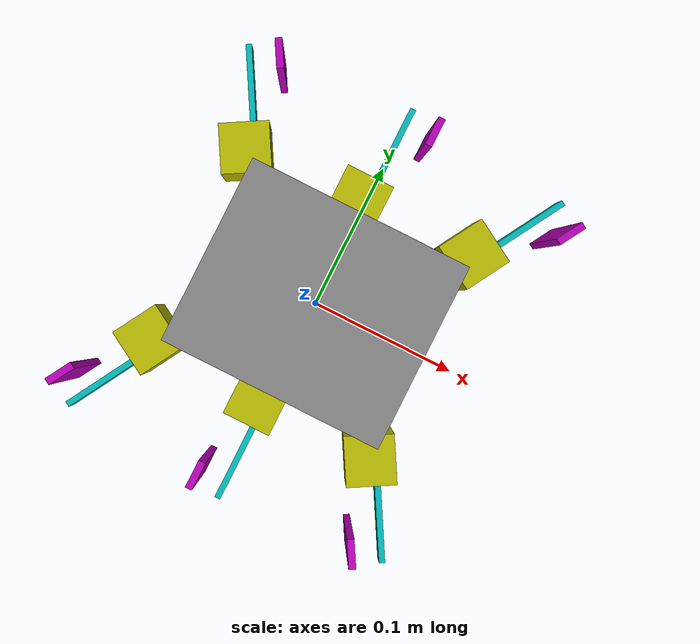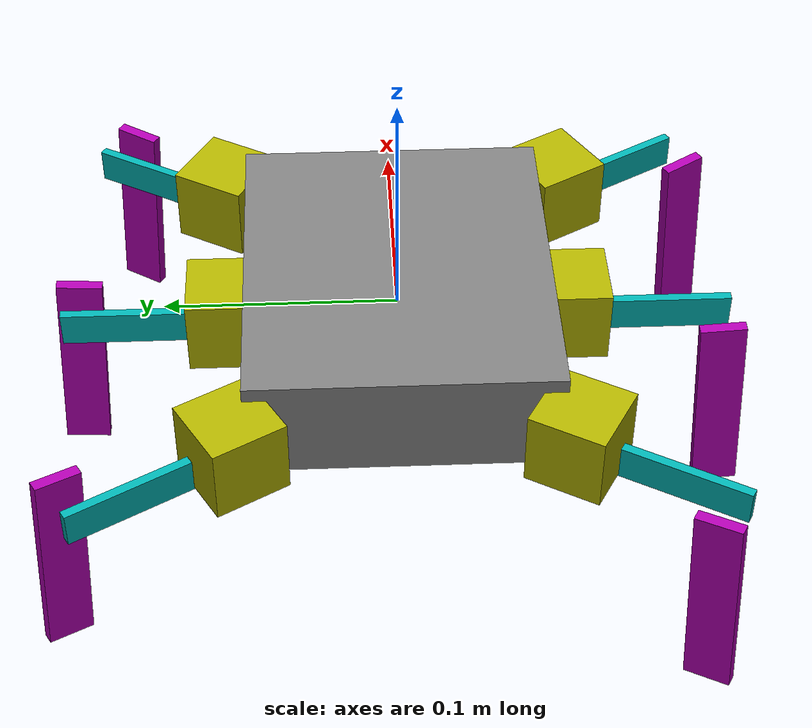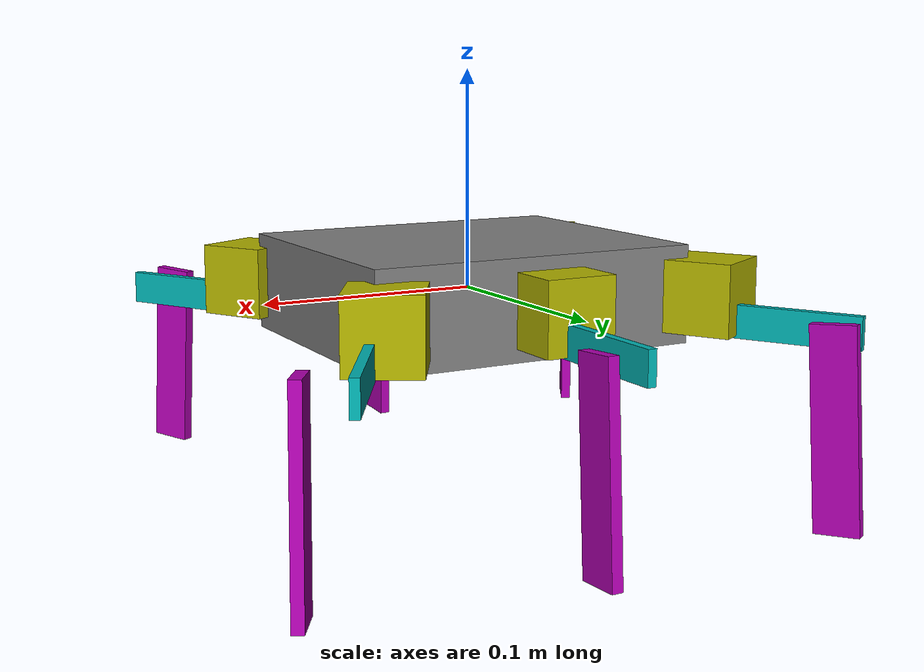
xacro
<?xml version="1.0"?>
<robot xmlns:xacro="http://ros.org/wiki/xacro" name="hexapod">

	<!-- Properties -->
	<!-- INERTIA COORDINATE SYSTEM IS DIFFRENT THAN GAZEBO, INERTIA Y IS UP, GAZEBO Z IS UP -->
	<xacro:property name="norm" value="100" />

	<xacro:property name="base_width" value="${13/norm}" />
	<xacro:property name="base_length" value="${15.5/norm}" />
	<xacro:property name="base_height" value="${4.5/norm}" />

	<!-- Define macros for inertia  -->
	<xacro:macro name="box_inertia" params="m w h d origin_xyz rpy_x rpy_y rpy_z">
		<inertial>
			<origin xyz="${origin_xyz}" rpy="${rpy_x} ${rpy_y} ${rpy_z}"/>
			<mass value="${m}" />
			<inertia ixx="${(m/12) * (h*h + d*d)}" ixy="0.0" ixz="0.0" iyy="${(m/12) * (w*w + d*d)}"
				iyz="0.0" izz="${(m/12) * (w*w + h*h)}" />
		</inertial>
	</xacro:macro>

<!-- Parallel axis theorem -->
	<xacro:macro name="box_inertia_parallel_w" params="m w h d origin_xyz rpy_x rpy_y rpy_z">
		<inertial>
			<origin xyz="${origin_xyz}" rpy="${rpy_x} ${rpy_y} ${rpy_z}" />
			<mass value="${m}" />
			<inertia ixx="${(m/12) * (h*h + d*d + w*w/4)}" ixy="0.0" ixz="0.0" iyy="${(m/12) * (w*w + d*d + w*w/4)}"
				iyz="0.0" izz="${(m/12) * (w*w + h*h + w*w/4)}" />
		</inertial>
	</xacro:macro>

	<xacro:macro name="cylinder_inertia" params="m r h">
		<inertial>
			<origin xyz="0 0 0" rpy="${pi/2} 0 0" />
			<mass value="${m}" />
			<inertia ixx="${(m/12) * (3*r*r + h*h)}" ixy="0" ixz="0" iyy="${(m/12) * (3*r*r + h*h)}"
				iyz="0" izz="${(m/2) * (r*r)}" />
		</inertial>
	</xacro:macro>

	<xacro:macro name="sphere_inertia" params="m r">
		<inertial>
			<mass value="${m}" />
			<inertia ixx="${(2/5) * m * (r*r)}" ixy="0.0" ixz="0.0" iyy="${(2/5) * m * (r*r)}"
				iyz="0.0" izz="${(2/5) * m * (r*r)}" />
		</inertial>
	</xacro:macro>

	<!-- Build the body frame -->
	<link name="base_link">
		<collision>
			<geometry>
				<box size="${base_length} ${base_width} ${base_height}" />
			</geometry>
		</collision>

	</link>

	<!-- Robot Footprint -->

	<joint name="base_joint" type="fixed">
		<parent link="base_link" />
		<child link="thorax" />
		<origin xyz="0 0 0" rpy="0 0 0" />
	</joint>

	<link name="thorax">
		<visual>
			<origin xyz="0 0 0" rpy="0 0 0" />
			<geometry>
				<box size="${base_length} ${base_width} ${base_height}" />
			</geometry>
			<material name="grey">
				<color rgba="0.5 0.5 0.5 1" />
			</material>
		</visual>
		<collision>
			<origin xyz="0 0 0" rpy="0 0 0" />
			<geometry>
				<box size="${base_length} ${base_width} ${base_height}" />
			</geometry>
			<material name="grey">
				<color rgba="0.5 0.5 0.5 1" />
			</material>
		</collision>

		<xacro:box_inertia rpy_x="0" rpy_y="0" rpy_z="0"
		origin_xyz="0 0 0" m="0.03"
		 w="${15.5/norm}" h="${13/norm}" d="${4.5/norm}" />
	</link>

	<!-- Pi parameter -->
	<xacro:property name="pi" value="3.1415926535897931" />

	<!-- Joint properties -->
	<xacro:property name="joint_lower_limit" value="-${1.5}" />
	<xacro:property name="joint_upper_limit" value="${1.5}" />
	<xacro:property name="joint_effort" value="0.2745862" />
	<xacro:property name="joint_velocity" value="0.000031998" />

	<!-- Leg macros -->
	<xacro:macro name="leg" params="side num x y angle">

		<!-- Build leg -->
		<!-- joint to center of thorax -->
		<joint name="leg_center_joint_${side}${num}" type="fixed">
			<origin xyz="${x} ${y} 0" rpy="0 0 0" />
			<parent link="thorax" />
			<child link="leg_center_${side}${num}" />
		</joint>

		<link name="leg_center_${side}${num}" >
		<!-- THIS IS EXTRA -->
			<xacro:box_inertia rpy_x="0" rpy_y="0" rpy_z="0"
			  origin_xyz="${x} ${y} 0" m="0.0001"
			   w="${1/norm}" d="${1/norm}" h="${1/norm}" />
		</link>

		<joint name="coxa_joint_${side}${num}" type="revolute">
			<origin xyz="0 0 0" rpy="0 0 ${angle}" />
			<parent link="leg_center_${side}${num}" />
			<child link="coxa_${side}${num}" />
			<axis xyz="0 0 -1" />
			<limit lower="${joint_lower_limit}" upper="${joint_upper_limit}"
				effort="${joint_effort}" velocity="${joint_velocity}" />
		</joint>

		<transmission name="coxa_tran_${side}${num}">
			<type>transmission_interface/SimpleTransmission</type>
			<joint name="coxa_joint_${side}${num}">
				<hardwareInterface>hardware_interface/EffortJointInterface</hardwareInterface>
			</joint>
			<actuator name="coxa_motor_${side}${num}">
				<hardwareInterface>hardware_interface/EffortJointInterface</hardwareInterface>
				<mechanicalReduction>1</mechanicalReduction>
			</actuator>
    	</transmission>

		<link name="coxa_${side}${num}">
			<visual>
			<xacro:if value="${side == 'l'}">
				<origin xyz="${0.8/norm} ${0.5/norm} 0" rpy="0 0 0" />
			</xacro:if>
			<xacro:if value="${side == 'r'}">
				<origin xyz="${0.8/norm} -${0.5/norm} 0" rpy="0 0 0" />
			</xacro:if>
				<geometry>
					<box size="${3.3/norm} ${3.3/norm} ${3.3/norm}" />
				</geometry>
				<material name="">
					<color rgba="0.7 0.7 0 1" />
				</material>
			</visual>
			<collision>
			<xacro:if value="${side == 'l'}">
				<origin xyz="${0.8/norm} ${0.5/norm} 0" rpy="0 0 0" />
			</xacro:if>
			<xacro:if value="${side == 'r'}">
				<origin xyz="${0.8/norm} -${0.5/norm} 0" rpy="0 0 0" />
			</xacro:if>
				<geometry>
					<box size="${3.3/norm} ${3.3/norm} ${3.3/norm}" />
				</geometry>
				<material name="">
					<color rgba="0.7 0.7 0 1" />
				</material>
			</collision>
			<xacro:if value="${side == 'l'}">
					<xacro:box_inertia rpy_x="0" rpy_y="0" rpy_z="0"
					  origin_xyz="${0.8/norm} ${0.5/norm} 0"  m="0.01"
					   w="${3.3/norm}" d="${3.3/norm}" h="${3.3/norm}" />
			</xacro:if>
			<xacro:if value="${side == 'r'}">
					<xacro:box_inertia rpy_x="0" rpy_y="0" rpy_z="0"
					   origin_xyz="${0.8/norm} -${0.5/norm} 0"  m="0.01"
					   w="${3.3/norm}" d="${3.3/norm}" h="${3.3/norm}" />
			</xacro:if>

		</link>

		<joint name="femur_joint_${side}${num}" type="revolute">
		<!-- TODO check maybe +pi/2 separate for left and right -->
			<origin xyz="${1/norm} 0 -${1/norm}" rpy="-${pi/2} 0 0" />
			<parent link="coxa_${side}${num}" />
			<child link="femur_${side}${num}" />
			<axis xyz="0 0 -1" />
			<limit lower="${joint_lower_limit}" upper="${joint_upper_limit}"
				effort="${joint_effort}" velocity="${joint_velocity}" />
		</joint>

		<transmission name="femur_tran_${side}${num}">
			<type>transmission_interface/SimpleTransmission</type>
			<joint name="femur_joint_${side}${num}">
				<hardwareInterface>hardware_interface/EffortJointInterface</hardwareInterface>
			</joint>
			<actuator name="femur_motor_${side}${num}">
				<hardwareInterface>hardware_interface/EffortJointInterface</hardwareInterface>
				<mechanicalReduction>1</mechanicalReduction>
			</actuator>
    	</transmission>

		<link name="femur_${side}${num}">
			<visual>
				<origin xyz="${(7/2)/norm} 0 0" rpy="0 0 0" />
				<geometry>
					<box size="${7/norm} ${1.5/norm} ${0.4/norm}" />
				</geometry>
				<material name="">
					<color rgba="0 0.7 0.7 1" />
				</material>
			</visual>
			<collision>
				<origin xyz="${(7/2)/norm} 0 0" rpy="0 0 0" />
				<geometry>
					<box size="${7/norm} ${1.5/norm} ${0.4/norm}" />
				</geometry>
				<material name="">
					<color rgba="0 0.7 0.7 1" />
				</material>
			</collision>
			<xacro:box_inertia_parallel_w rpy_x="0" rpy_y="0" rpy_z="0"
			 origin_xyz="${(7/2)/norm} 0 0" m="0.01"
			  w="${7/norm}" d="${0.4/norm}" h="${1.5/norm}" />
		</link>

		<joint name="tibia_joint_${side}${num}" type="revolute">
			<origin xyz="${((7-0.4)/norm)} 0 0" rpy="${pi} 0 ${pi/2}" />
			<parent link="femur_${side}${num}" />
			<child link="tibia_${side}${num}" />
			<axis xyz="0 0 1" />
			<limit lower="${joint_lower_limit}" upper="${joint_upper_limit}"
				effort="${joint_effort}" velocity="${joint_velocity}" />
		</joint>

		<transmission name="tibia_tran_${side}${num}">
			<type>transmission_interface/SimpleTransmission</type>
			<joint name="tibia_joint_${side}${num}">
				<hardwareInterface>hardware_interface/EffortJointInterface</hardwareInterface>
			</joint>
			<actuator name="tibia_motor_${side}${num}">
				<hardwareInterface>hardware_interface/EffortJointInterface</hardwareInterface>
				<mechanicalReduction>1</mechanicalReduction>
			</actuator>
    	</transmission>

		<link name="tibia_${side}${num}">
			<visual>
				<origin xyz="${((9-1.4)/2)/norm} 0 ${2/norm}" rpy="0 0 0.06" />
				<geometry>
					<box size="${9/norm} ${2/norm} ${0.5/norm}" />
				</geometry>
				<material name="">
					<color rgba="0.7 0 0.7 1" />
				</material>
			</visual>
			<collision name='tibia_${side}${num}_collision'>
				<origin xyz="${((9-1.4)/2)/norm} 0 ${2/norm}" rpy="0 0 0.06" />
				<geometry>
					<box size="${9/norm} ${2/norm} ${0.5/norm}" />
				</geometry>
				<surface>
					<friction>
					<ode>
						<mu>10000.01</mu>
						<mu2>10000.01</mu2>
					</ode>
					</friction>
				</surface>
				<material name="">
					<color rgba="0.7 0 0.7 1" />
				</material>
			</collision>

			<xacro:box_inertia_parallel_w rpy_x="0" rpy_y="0" rpy_z="0.06"
			 origin_xyz="${((9-1.4)/2)/norm} 0 ${2/norm}" m="0.01"
			  w="${9/norm}" d="${0.5/norm}" h="${2/norm}" />
		</link>

		<joint name="tibia_foot_joint_${side}${num}" type="fixed">
			<origin xyz="${((9-1.4)/2)/norm} 0 0" rpy="0 0 0" />
			<parent link="tibia_${side}${num}" />
			<child link="tibia_foot_${side}${num}" />
		</joint>

		<link name="tibia_foot_${side}${num}">
			<collision name='tibia_foot${side}${num}_collision'>
				<origin xyz="0 0 0" rpy="0 0 0" />
				<geometry>
					<box size="${0.01/norm} ${0.01/norm} ${0.01/norm}" />
				</geometry>
				<surface>
					<friction>
					<ode>
						<mu>10000.01</mu>
						<mu2>10000.01</mu2>
					</ode>
					</friction>
				</surface>
				<material name="">
					<color rgba="0.7 0 0.7 1" />
				</material>
			</collision>
		</link>
	</xacro:macro>

	<xacro:property name="x_far_offset" value="${(15.5/2)/norm}" />
	<xacro:property name="y_far_offset" value="${(13/2)/norm}" />

	<!-- Build robot model -->
	<xacro:leg side="r" num="1" x="${x_far_offset}" y="-${y_far_offset}" angle="-${pi/3}" />
	<xacro:leg side="r" num="2" x="0" y="-${y_far_offset}" angle="-${pi/2}" />
	<xacro:leg side="r" num="3" x="-${x_far_offset}" y="-${y_far_offset}" angle="-${pi*2/3}" />
	<xacro:leg side="l" num="1" x="${x_far_offset}" y="${y_far_offset}" angle="${pi/3}" />
	<xacro:leg side="l" num="2" x="0" y="${y_far_offset}" angle="${pi/2}" />
	<xacro:leg side="l" num="3" x="-${x_far_offset}" y="${y_far_offset}" angle="${pi*2/3}" />

	<gazebo>
        <plugin name="gazebo_ros_control" filename="libgazebo_ros_control.so">
            <robotNamespace>/hexapod</robotNamespace>
        </plugin>
		<self_collide>1</self_collide>
    </gazebo>

	  <!-- Contact Sensor -->
    <gazebo reference="base_link">
        <material>Gazebo/Blue</material>
        <kp>1000.0</kp>
        <kd>1000.0</kd>
        <mu1>1000000.0</mu1>
        <mu2>1000000.0</mu2>

        <sensor name="contactsensor_sensor" type="contact">
          <always_on>true</always_on>
          <contact>
            <collision>base_link_fixed_joint_lump__thorax_collision_1</collision>
          </contact>
          <plugin name="bumper0_plugin" filename="libgazebo_ros_bumper.so">
            <bumperTopicName>contactsensor_state</bumperTopicName>
            <frameName>contactsensor_link</frameName>
          </plugin>
        </sensor>

    </gazebo>

<!-- ODOM sensor -->
	 <gazebo>
        <plugin name="p3d_base_controller" filename="libgazebo_ros_p3d.so">
            <alwaysOn>true</alwaysOn>
            <bodyName>base_link</bodyName>
            <topicName>odom</topicName>
            <gaussianNoise>0.01</gaussianNoise>
            <frameName>world</frameName>
            <xyzOffsets>0 0 0</xyzOffsets>
            <rpyOffsets>0 0 0</rpyOffsets>
        </plugin>
    </gazebo>

	<!-- IMU sensor -->
	 <gazebo>
        <plugin name="gazebo_ros_imu_controller" filename="libgazebo_ros_imu.so">
          <robotNamespace>/hexapod</robotNamespace>
          <topicName>imu/data</topicName>
          <serviceName>imu/service</serviceName>
          <bodyName>base_link</bodyName>
          <gaussianNoise>0</gaussianNoise>
          <rpyOffsets>0 0 0</rpyOffsets>
          <alwaysOn>true</alwaysOn>
          <gaussianNoise>0</gaussianNoise>
        </plugin>

   </gazebo>

	    <gazebo reference="tibia_foot_l1">
			<material>Gazebo/Blue</material>
			<kp>1000.0</kp>
			<kd>1000.0</kd>
			<mu1>1000000.0</mu1>
			<mu2>1000000.0</mu2>

			<sensor name="new_contactsensor_sensor" type="contact">
				<always_on>true</always_on>
				<contact>
					<collision>tibia_foot_l1_collision_collision</collision>
				</contact>
				<plugin name="bumper0_plugin" filename="libgazebo_ros_bumper.so">
					<bumperTopicName>tibia_l1_collision</bumperTopicName>
					<frameName>contactsensor_link</frameName>
				</plugin>
			</sensor>

    	</gazebo>
		   <gazebo reference="tibia_foot_l2">
			<material>Gazebo/Blue</material>
			<kp>1000.0</kp>
			<kd>1000.0</kd>
			<mu1>1000000.0</mu1>
			<mu2>1000000.0</mu2>

			<sensor name="new_contactsensor_sensor" type="contact">
				<always_on>true</always_on>
					<contact>
					<collision>tibia_foot_l2_collision_collision</collision>
				</contact>
				<plugin name="bumper0_plugin" filename="libgazebo_ros_bumper.so">
					<bumperTopicName>tibia_l2_collision</bumperTopicName>
					<frameName>contactsensor_link</frameName>
				</plugin>
			</sensor>

    	</gazebo>
		   <gazebo reference="tibia_foot_l3">
			<material>Gazebo/Blue</material>
			<kp>1000.0</kp>
			<kd>1000.0</kd>
			<mu1>1000000.0</mu1>
			<mu2>1000000.0</mu2>

			<sensor name="new_contactsensor_sensor" type="contact">
				<always_on>true</always_on>
					<contact>
					<collision>tibia_foot_l3_collision_collision</collision>
				</contact>
				<plugin name="bumper0_plugin" filename="libgazebo_ros_bumper.so">
					<bumperTopicName>tibia_l3_collision</bumperTopicName>
					<frameName>contactsensor_link</frameName>
				</plugin>
			</sensor>

    	</gazebo>
		   <gazebo reference="tibia_foot_r1">
			<material>Gazebo/Blue</material>
			<kp>1000.0</kp>
			<kd>1000.0</kd>
			<mu1>1000000.0</mu1>
			<mu2>1000000.0</mu2>

			<sensor name="new_contactsensor_sensor" type="contact">
				<always_on>true</always_on>
					<contact>
					<collision>tibia_foot_r1_collision_collision</collision>
				</contact>
				<plugin name="bumper0_plugin" filename="libgazebo_ros_bumper.so">
					<bumperTopicName>tibia_r1_collision</bumperTopicName>
					<frameName>contactsensor_link</frameName>
				</plugin>
			</sensor>

    	</gazebo>
		   <gazebo reference="tibia_foot_r2">
			<material>Gazebo/Blue</material>
			<kp>1000.0</kp>
			<kd>1000.0</kd>
			<mu1>1000000.0</mu1>
			<mu2>1000000.0</mu2>

			<sensor name="new_contactsensor_sensor" type="contact">
				<always_on>true</always_on>
					<contact>
					<collision>tibia_foot_r2_collision_collision</collision>
				</contact>
				<plugin name="bumper0_plugin" filename="libgazebo_ros_bumper.so">
					<bumperTopicName>tibia_r2_collision</bumperTopicName>
					<frameName>contactsensor_link</frameName>
				</plugin>
			</sensor>

    	</gazebo>
		   <gazebo reference="tibia_foot_r3">
			<material>Gazebo/Blue</material>
			<kp>1000.0</kp>
			<kd>1000.0</kd>
			<mu1>1000000.0</mu1>
			<mu2>1000000.0</mu2>

			<sensor name="new_contactsensor_sensor" type="contact">
				<always_on>true</always_on>
					<contact>
					<collision>tibia_foot_r3_collision_collision</collision>
				</contact>
				<plugin name="bumper0_plugin" filename="libgazebo_ros_bumper.so">
					<bumperTopicName>tibia_r3_collision</bumperTopicName>
					<frameName>contactsensor_link</frameName>
				</plugin>
			</sensor>

    	</gazebo>

</robot>
